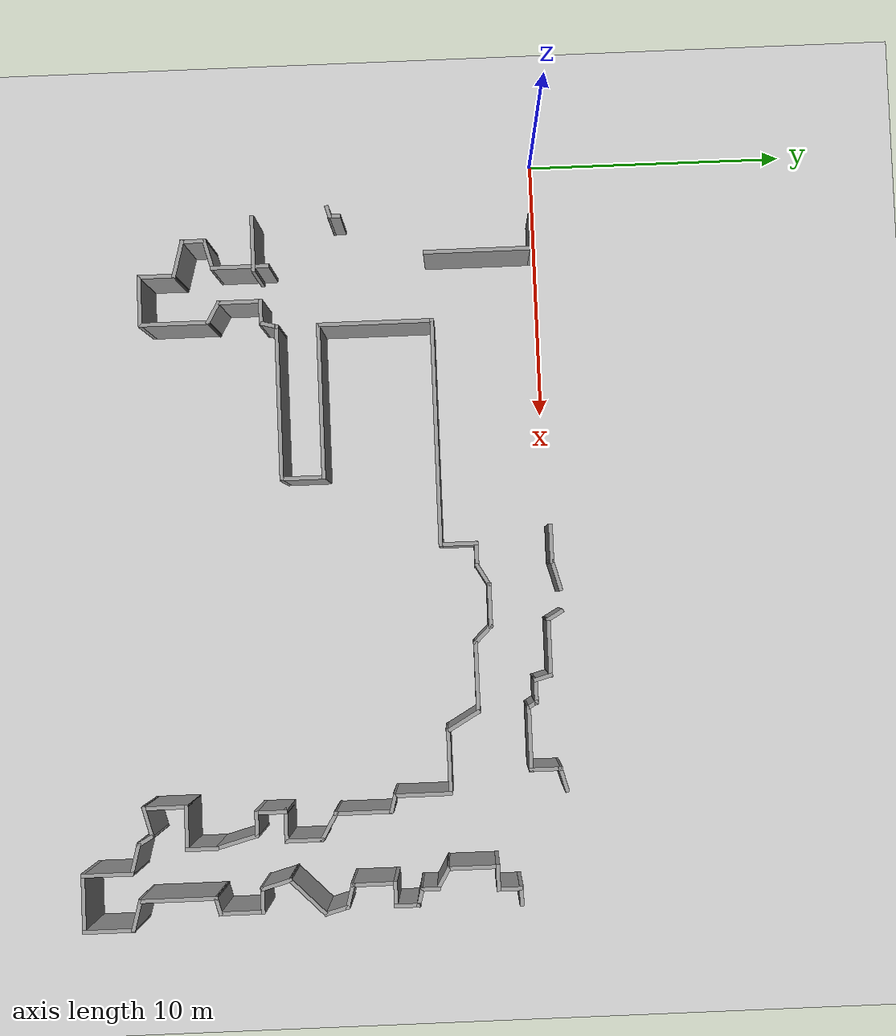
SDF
<sdf version="1.7">
 <world name="default">
  <model name="ground_plane">
   <static>1</static>
   <link name="link">
    <collision name="collision">
     <geometry><plane><normal>0 0 1</normal><size>100 100</size></plane></geometry>
     <surface>
      <contact><collide_bitmask>65535</collide_bitmask></contact>
      <friction><ode><mu>100</mu><mu2>50</mu2></ode></friction>
     </surface>
    </collision>
    <visual name="visual">
     <cast_shadows>0</cast_shadows>
     <geometry><plane><normal>0 0 1</normal><size>100 100</size></plane></geometry>
     <material>
      <script><uri>file://media/materials/scripts/gazebo.material</uri><name>Gazebo/Grey</name></script>
     </material>
    </visual>
   </link>
  </model>
  <model name="latest_world">
   <pose>-1.4911 -0.096187 0 0 -0 0</pose>
   <link name="Wall_10">
    <collision name="Wall_10_Collision">
     <geometry><box><size>1 0.15 2.5</size></box></geometry>
     <pose>0 0 1.25 0 -0 0</pose>
    </collision>
    <visual name="Wall_10_Visual">
     <pose>0 0 1.25 0 -0 0</pose>
     <geometry><box><size>1 0.15 2.5</size></box></geometry>
     <material>
      <script><uri>file://media/materials/scripts/gazebo.material</uri><name>Gazebo/Grey</name></script>
      <ambient>1 1 1 1</ambient>
     </material>
     <meta><layer>0</layer></meta>
    </visual>
    <pose>29.1732 -4.44675 0 0 -0 -0.523599</pose>
   </link>
   <link name="Wall_11">
    <collision name="Wall_11_Collision">
     <geometry><box><size>0.75 0.15 2.5</size></box></geometry>
     <pose>0 0 1.25 0 -0 0</pose>
    </collision>
    <visual name="Wall_11_Visual">
     <pose>0 0 1.25 0 -0 0</pose>
     <geometry><box><size>0.75 0.15 2.5</size></box></geometry>
     <material>
      <script><uri>file://media/materials/scripts/gazebo.material</uri><name>Gazebo/Grey</name></script>
      <ambient>1 1 1 1</ambient>
     </material>
     <meta><layer>0</layer></meta>
    </visual>
    <pose>29.5412 -4.95925 0 0 -0 -1.5708</pose>
   </link>
   <link name="Wall_12">
    <collision name="Wall_12_Collision">
     <geometry><box><size>0.75 0.15 2.5</size></box></geometry>
     <pose>0 0 1.25 0 -0 0</pose>
    </collision>
    <visual name="Wall_12_Visual">
     <pose>0 0 1.25 0 -0 0</pose>
     <geometry><box><size>0.75 0.15 2.5</size></box></geometry>
     <material>
      <script><uri>file://media/materials/scripts/gazebo.material</uri><name>Gazebo/Grey</name></script>
      <ambient>1 1 1 1</ambient>
     </material>
     <meta><layer>0</layer></meta>
    </visual>
    <pose>29.831 -5.3369 0 0 -0 -0.261799</pose>
   </link>
   <link name="Wall_13">
    <collision name="Wall_13_Collision">
     <geometry><box><size>1 0.15 2.5</size></box></geometry>
     <pose>0 0 1.25 0 -0 0</pose>
    </collision>
    <visual name="Wall_13_Visual">
     <pose>0 0 1.25 0 -0 0</pose>
     <geometry><box><size>1 0.15 2.5</size></box></geometry>
     <material>
      <script><uri>file://media/materials/scripts/gazebo.material</uri><name>Gazebo/Grey</name></script>
      <ambient>1 1 1 1</ambient>
     </material>
     <meta><layer>0</layer></meta>
    </visual>
    <pose>30.1208 -5.83954 0 0 -0 -1.5708</pose>
   </link>
   <link name="Wall_14">
    <collision name="Wall_14_Collision">
     <geometry><box><size>1 0.15 2.5</size></box></geometry>
     <pose>0 0 1.25 0 -0 0</pose>
    </collision>
    <visual name="Wall_14_Visual">
     <pose>0 0 1.25 0 -0 0</pose>
     <geometry><box><size>1 0.15 2.5</size></box></geometry>
     <material>
      <script><uri>file://media/materials/scripts/gazebo.material</uri><name>Gazebo/Grey</name></script>
      <ambient>1 1 1 1</ambient>
     </material>
     <meta><layer>0</layer></meta>
    </visual>
    <pose>29.6958 -6.26454 0 0 -0 3.14159</pose>
   </link>
   <link name="Wall_15">
    <collision name="Wall_15_Collision">
     <geometry><box><size>1.75 0.15 2.5</size></box></geometry>
     <pose>0 0 1.25 0 -0 0</pose>
    </collision>
    <visual name="Wall_15_Visual">
     <pose>0 0 1.25 0 -0 0</pose>
     <geometry><box><size>1.75 0.15 2.5</size></box></geometry>
     <material>
      <script><uri>file://media/materials/scripts/gazebo.material</uri><name>Gazebo/Grey</name></script>
      <ambient>1 1 1 1</ambient>
     </material>
     <meta><layer>0</layer></meta>
    </visual>
    <pose>29.2708 -7.06454 0 0 -0 -1.5708</pose>
   </link>
   <link name="Wall_16">
    <collision name="Wall_16_Collision">
     <geometry><box><size>1 0.15 2.5</size></box></geometry>
     <pose>0 0 1.25 0 -0 0</pose>
    </collision>
    <visual name="Wall_16_Visual">
     <pose>0 0 1.25 0 -0 0</pose>
     <geometry><box><size>1 0.15 2.5</size></box></geometry>
     <material>
      <script><uri>file://media/materials/scripts/gazebo.material</uri><name>Gazebo/Grey</name></script>
      <ambient>1 1 1 1</ambient>
     </material>
     <meta><layer>0</layer></meta>
    </visual>
    <pose>29.6813 -7.97454 0 0 -0 -0.261799</pose>
   </link>
   <link name="Wall_17">
    <collision name="Wall_17_Collision">
     <geometry><box><size>1 0.15 2.5</size></box></geometry>
     <pose>0 0 1.25 0 -0 0</pose>
    </collision>
    <visual name="Wall_17_Visual">
     <pose>0 0 1.25 0 -0 0</pose>
     <geometry><box><size>1 0.15 2.5</size></box></geometry>
     <material>
      <script><uri>file://media/materials/scripts/gazebo.material</uri><name>Gazebo/Grey</name></script>
      <ambient>1 1 1 1</ambient>
     </material>
     <meta><layer>0</layer></meta>
    </visual>
    <pose>30.2018 -8.49506 0 0 -0 -1.309</pose>
   </link>
   <link name="Wall_18">
    <collision name="Wall_18_Collision">
     <geometry><box><size>2 0.15 2.5</size></box></geometry>
     <pose>0 0 1.25 0 -0 0</pose>
    </collision>
    <visual name="Wall_18_Visual">
     <pose>0 0 1.25 0 -0 0</pose>
     <geometry><box><size>2 0.15 2.5</size></box></geometry>
     <material>
      <script><uri>file://media/materials/scripts/gazebo.material</uri><name>Gazebo/Grey</name></script>
      <ambient>1 1 1 1</ambient>
     </material>
     <meta><layer>0</layer></meta>
    </visual>
    <pose>29.6577 -9.55965 0 0 -0 -2.35619</pose>
   </link>
   <link name="Wall_19">
    <collision name="Wall_19_Collision">
     <geometry><box><size>1.25 0.15 2.5</size></box></geometry>
     <pose>0 0 1.25 0 -0 0</pose>
    </collision>
    <visual name="Wall_19_Visual">
     <pose>0 0 1.25 0 -0 0</pose>
     <geometry><box><size>1.25 0.15 2.5</size></box></geometry>
     <material>
      <script><uri>file://media/materials/scripts/gazebo.material</uri><name>Gazebo/Grey</name></script>
      <ambient>1 1 1 1</ambient>
     </material>
     <meta><layer>0</layer></meta>
    </visual>
    <pose>29.146 -10.745 0 0 -0 -1.309</pose>
   </link>
   <link name="Wall_20">
    <collision name="Wall_20_Collision">
     <geometry><box><size>1 0.15 2.5</size></box></geometry>
     <pose>0 0 1.25 0 -0 0</pose>
    </collision>
    <visual name="Wall_20_Visual">
     <pose>0 0 1.25 0 -0 0</pose>
     <geometry><box><size>1 0.15 2.5</size></box></geometry>
     <material>
      <script><uri>file://media/materials/scripts/gazebo.material</uri><name>Gazebo/Grey</name></script>
      <ambient>1 1 1 1</ambient>
     </material>
     <meta><layer>0</layer></meta>
    </visual>
    <pose>29.7134 -11.2762 0 0 -0 0</pose>
   </link>
   <link name="Wall_21">
    <collision name="Wall_21_Collision">
     <geometry><box><size>1.75 0.15 2.5</size></box></geometry>
     <pose>0 0 1.25 0 -0 0</pose>
    </collision>
    <visual name="Wall_21_Visual">
     <pose>0 0 1.25 0 -0 0</pose>
     <geometry><box><size>1.75 0.15 2.5</size></box></geometry>
     <material>
      <script><uri>file://media/materials/scripts/gazebo.material</uri><name>Gazebo/Grey</name></script>
      <ambient>1 1 1 1</ambient>
     </material>
     <meta><layer>0</layer></meta>
    </visual>
    <pose>30.1384 -12.0762 0 0 -0 -1.5708</pose>
   </link>
   <link name="Wall_22">
    <collision name="Wall_22_Collision">
     <geometry><box><size>0.75 0.15 2.5</size></box></geometry>
     <pose>0 0 1.25 0 -0 0</pose>
    </collision>
    <visual name="Wall_22_Visual">
     <pose>0 0 1.25 0 -0 0</pose>
     <geometry><box><size>0.75 0.15 2.5</size></box></geometry>
     <material>
      <script><uri>file://media/materials/scripts/gazebo.material</uri><name>Gazebo/Grey</name></script>
      <ambient>1 1 1 1</ambient>
     </material>
     <meta><layer>0</layer></meta>
    </visual>
    <pose>29.8486 -12.9539 0 0 -0 -2.87979</pose>
   </link>
   <link name="Wall_23">
    <collision name="Wall_23_Collision">
     <geometry><box><size>3 0.15 2.5</size></box></geometry>
     <pose>0 0 1.25 0 -0 0</pose>
    </collision>
    <visual name="Wall_23_Visual">
     <pose>0 0 1.25 0 -0 0</pose>
     <geometry><box><size>3 0.15 2.5</size></box></geometry>
     <material>
      <script><uri>file://media/materials/scripts/gazebo.material</uri><name>Gazebo/Grey</name></script>
      <ambient>1 1 1 1</ambient>
     </material>
     <meta><layer>0</layer></meta>
    </visual>
    <pose>29.5588 -14.4565 0 0 -0 -1.5708</pose>
   </link>
   <link name="Wall_24">
    <collision name="Wall_24_Collision">
     <geometry><box><size>1.25 0.15 2.5</size></box></geometry>
     <pose>0 0 1.25 0 -0 0</pose>
    </collision>
    <visual name="Wall_24_Visual">
     <pose>0 0 1.25 0 -0 0</pose>
     <geometry><box><size>1.25 0.15 2.5</size></box></geometry>
     <material>
      <script><uri>file://media/materials/scripts/gazebo.material</uri><name>Gazebo/Grey</name></script>
      <ambient>1 1 1 1</ambient>
     </material>
     <meta><layer>0</layer></meta>
    </visual>
    <pose>30.0901 -16.0239 0 0 -0 -0.261799</pose>
   </link>
   <link name="Wall_25">
    <collision name="Wall_25_Collision">
     <geometry><box><size>2 0.15 2.5</size></box></geometry>
     <pose>0 0 1.25 0 -0 0</pose>
    </collision>
    <visual name="Wall_25_Visual">
     <pose>0 0 1.25 0 -0 0</pose>
     <geometry><box><size>2 0.15 2.5</size></box></geometry>
     <material>
      <script><uri>file://media/materials/scripts/gazebo.material</uri><name>Gazebo/Grey</name></script>
      <ambient>1 1 1 1</ambient>
     </material>
     <meta><layer>0</layer></meta>
    </visual>
    <pose>30.6213 -17.0912 0 0 -0 -1.5708</pose>
   </link>
   <link name="Wall_26">
    <collision name="Wall_26_Collision">
     <geometry><box><size>2.25 0.15 2.5</size></box></geometry>
     <pose>0 0 1.25 0 -0 0</pose>
    </collision>
    <visual name="Wall_26_Visual">
     <pose>0 0 1.25 0 -0 0</pose>
     <geometry><box><size>2.25 0.15 2.5</size></box></geometry>
     <material>
      <script><uri>file://media/materials/scripts/gazebo.material</uri><name>Gazebo/Grey</name></script>
      <ambient>1 1 1 1</ambient>
     </material>
     <meta><layer>0</layer></meta>
    </visual>
    <pose>29.5713 -18.0162 0 0 -0 3.14159</pose>
   </link>
   <link name="Wall_27">
    <collision name="Wall_27_Collision">
     <geometry><box><size>2 0.15 2.5</size></box></geometry>
     <pose>0 0 1.25 0 -0 0</pose>
    </collision>
    <visual name="Wall_27_Visual">
     <pose>0 0 1.25 0 -0 0</pose>
     <geometry><box><size>2 0.15 2.5</size></box></geometry>
     <material>
      <script><uri>file://media/materials/scripts/gazebo.material</uri><name>Gazebo/Grey</name></script>
      <ambient>1 1 1 1</ambient>
     </material>
     <meta><layer>0</layer></meta>
    </visual>
    <pose>28.5213 -17.0912 0 0 -0 1.5708</pose>
   </link>
   <link name="Wall_28">
    <collision name="Wall_28_Collision">
     <geometry><box><size>1.25 0.15 2.5</size></box></geometry>
     <pose>0 0 1.25 0 -0 0</pose>
    </collision>
    <visual name="Wall_28_Visual">
     <pose>0 0 1.25 0 -0 0</pose>
     <geometry><box><size>1.25 0.15 2.5</size></box></geometry>
     <material>
      <script><uri>file://media/materials/scripts/gazebo.material</uri><name>Gazebo/Grey</name></script>
      <ambient>1 1 1 1</ambient>
     </material>
     <meta><layer>0</layer></meta>
    </visual>
    <pose>27.9901 -16.0239 0 0 -0 2.87979</pose>
   </link>
   <link name="Wall_29">
    <collision name="Wall_29_Collision">
     <geometry><box><size>0.75 0.15 2.5</size></box></geometry>
     <pose>0 0 1.25 0 -0 0</pose>
    </collision>
    <visual name="Wall_29_Visual">
     <pose>0 0 1.25 0 -0 0</pose>
     <geometry><box><size>0.75 0.15 2.5</size></box></geometry>
     <material>
      <script><uri>file://media/materials/scripts/gazebo.material</uri><name>Gazebo/Grey</name></script>
      <ambient>1 1 1 1</ambient>
     </material>
     <meta><layer>0</layer></meta>
    </visual>
    <pose>27.3088 -15.6217 0 0 -0 2.0944</pose>
   </link>
   <link name="Wall_290">
    <collision name="Wall_290_Collision">
     <geometry><box><size>0.5 0.15 2.5</size></box></geometry>
     <pose>0 0 1.25 0 -0 0</pose>
    </collision>
    <visual name="Wall_290_Visual">
     <pose>0 0 1.25 0 -0 0</pose>
     <geometry><box><size>0.5 0.15 2.5</size></box></geometry>
     <material>
      <script><uri>file://media/materials/scripts/gazebo.material</uri><name>Gazebo/Grey</name></script>
      <ambient>1 1 1 1</ambient>
     </material>
     <meta><layer>0</layer></meta>
    </visual>
    <pose>3.6309 -7.85749 0 0 -0 0.261799</pose>
   </link>
   <link name="Wall_291">
    <collision name="Wall_291_Collision">
     <geometry><box><size>0.5 0.15 2.5</size></box></geometry>
     <pose>0 0 1.25 0 -0 0</pose>
    </collision>
    <visual name="Wall_291_Visual">
     <pose>0 0 1.25 0 -0 0</pose>
     <geometry><box><size>0.5 0.15 2.5</size></box></geometry>
     <material>
      <script><uri>file://media/materials/scripts/gazebo.material</uri><name>Gazebo/Grey</name></script>
      <ambient>1 1 1 1</ambient>
     </material>
     <meta><layer>0</layer></meta>
    </visual>
    <pose>3.79994 -7.6372 0 0 -0 1.5708</pose>
   </link>
   <link name="Wall_30">
    <collision name="Wall_30_Collision">
     <geometry><box><size>1.25 0.15 2.5</size></box></geometry>
     <pose>0 0 1.25 0 -0 0</pose>
    </collision>
    <visual name="Wall_30_Visual">
     <pose>0 0 1.25 0 -0 0</pose>
     <geometry><box><size>1.25 0.15 2.5</size></box></geometry>
     <material>
      <script><uri>file://media/materials/scripts/gazebo.material</uri><name>Gazebo/Grey</name></script>
      <ambient>1 1 1 1</ambient>
     </material>
     <meta><layer>0</layer></meta>
    </visual>
    <pose>26.6276 -15.5043 0 0 -0 -2.87979</pose>
   </link>
   <link name="Wall_303">
    <collision name="Wall_303_Collision">
     <geometry><box><size>4.25 0.15 2.5</size></box></geometry>
     <pose>0 0 1.25 0 -0 0</pose>
    </collision>
    <visual name="Wall_303_Visual">
     <pose>0 0 1.25 0 -0 0</pose>
     <geometry><box><size>4.25 0.15 2.5</size></box></geometry>
     <material>
      <script><uri>file://media/materials/scripts/gazebo.material</uri><name>Gazebo/Grey</name></script>
      <ambient>1 1 1 1</ambient>
     </material>
     <meta><layer>0</layer></meta>
    </visual>
    <pose>5.34517 -2.14712 0 0 -0 1.5708</pose>
   </link>
   <link name="Wall_304">
    <collision name="Wall_304_Collision">
     <geometry><box><size>1.5 0.15 2.5</size></box></geometry>
     <pose>0 0 1.25 0 -0 0</pose>
    </collision>
    <visual name="Wall_304_Visual">
     <pose>0 0 1.25 0 -0 0</pose>
     <geometry><box><size>1.5 0.15 2.5</size></box></geometry>
     <material>
      <script><uri>file://media/materials/scripts/gazebo.material</uri><name>Gazebo/Grey</name></script>
      <ambient>1 1 1 1</ambient>
     </material>
     <meta><layer>0</layer></meta>
    </visual>
    <pose>4.67017 -0.097116 0 0 -0 3.14159</pose>
   </link>
   <link name="Wall_31">
    <collision name="Wall_31_Collision">
     <geometry><box><size>1.75 0.15 2.5</size></box></geometry>
     <pose>0 0 1.25 0 -0 0</pose>
    </collision>
    <visual name="Wall_31_Visual">
     <pose>0 0 1.25 0 -0 0</pose>
     <geometry><box><size>1.75 0.15 2.5</size></box></geometry>
     <material>
      <script><uri>file://media/materials/scripts/gazebo.material</uri><name>Gazebo/Grey</name></script>
      <ambient>1 1 1 1</ambient>
     </material>
     <meta><layer>0</layer></meta>
    </visual>
    <pose>26.0963 -14.8466 0 0 -0 1.5708</pose>
   </link>
   <link name="Wall_32">
    <collision name="Wall_32_Collision">
     <geometry><box><size>1.75 0.15 2.5</size></box></geometry>
     <pose>0 0 1.25 0 -0 0</pose>
    </collision>
    <visual name="Wall_32_Visual">
     <pose>0 0 1.25 0 -0 0</pose>
     <geometry><box><size>1.75 0.15 2.5</size></box></geometry>
     <material>
      <script><uri>file://media/materials/scripts/gazebo.material</uri><name>Gazebo/Grey</name></script>
      <ambient>1 1 1 1</ambient>
     </material>
     <meta><layer>0</layer></meta>
    </visual>
    <pose>26.8963 -14.0466 0 0 -0 0</pose>
   </link>
   <link name="Wall_33">
    <collision name="Wall_33_Collision">
     <geometry><box><size>1.25 0.15 2.5</size></box></geometry>
     <pose>0 0 1.25 0 -0 0</pose>
    </collision>
    <visual name="Wall_33_Visual">
     <pose>0 0 1.25 0 -0 0</pose>
     <geometry><box><size>1.25 0.15 2.5</size></box></geometry>
     <material>
      <script><uri>file://media/materials/scripts/gazebo.material</uri><name>Gazebo/Grey</name></script>
      <ambient>1 1 1 1</ambient>
     </material>
     <meta><layer>0</layer></meta>
    </visual>
    <pose>27.6963 -13.4966 0 0 -0 1.5708</pose>
   </link>
   <link name="Wall_34">
    <collision name="Wall_34_Collision">
     <geometry><box><size>1.75 0.15 2.5</size></box></geometry>
     <pose>0 0 1.25 0 -0 0</pose>
    </collision>
    <visual name="Wall_34_Visual">
     <pose>0 0 1.25 0 -0 0</pose>
     <geometry><box><size>1.75 0.15 2.5</size></box></geometry>
     <material>
      <script><uri>file://media/materials/scripts/gazebo.material</uri><name>Gazebo/Grey</name></script>
      <ambient>1 1 1 1</ambient>
     </material>
     <meta><layer>0</layer></meta>
    </visual>
    <pose>27.4892 -12.1739 0 0 -0 1.8326</pose>
   </link>
   <link name="Wall_35">
    <collision name="Wall_35_Collision">
     <geometry><box><size>1 0.15 2.5</size></box></geometry>
     <pose>0 0 1.25 0 -0 0</pose>
    </collision>
    <visual name="Wall_35_Visual">
     <pose>0 0 1.25 0 -0 0</pose>
     <geometry><box><size>1 0.15 2.5</size></box></geometry>
     <material>
      <script><uri>file://media/materials/scripts/gazebo.material</uri><name>Gazebo/Grey</name></script>
      <ambient>1 1 1 1</ambient>
     </material>
     <meta><layer>0</layer></meta>
    </visual>
    <pose>26.8572 -11.4011 0 0 -0 3.14159</pose>
   </link>
   <link name="Wall_36">
    <collision name="Wall_36_Collision">
     <geometry><box><size>1.25 0.15 2.5</size></box></geometry>
     <pose>0 0 1.25 0 -0 0</pose>
    </collision>
    <visual name="Wall_36_Visual">
     <pose>0 0 1.25 0 -0 0</pose>
     <geometry><box><size>1.25 0.15 2.5</size></box></geometry>
     <material>
      <script><uri>file://media/materials/scripts/gazebo.material</uri><name>Gazebo/Grey</name></script>
      <ambient>1 1 1 1</ambient>
     </material>
     <meta><layer>0</layer></meta>
    </visual>
    <pose>26.4322 -10.8511 0 0 -0 1.5708</pose>
   </link>
   <link name="Wall_37">
    <collision name="Wall_37_Collision">
     <geometry><box><size>1.25 0.15 2.5</size></box></geometry>
     <pose>0 0 1.25 0 -0 0</pose>
    </collision>
    <visual name="Wall_37_Visual">
     <pose>0 0 1.25 0 -0 0</pose>
     <geometry><box><size>1.25 0.15 2.5</size></box></geometry>
     <material>
      <script><uri>file://media/materials/scripts/gazebo.material</uri><name>Gazebo/Grey</name></script>
      <ambient>1 1 1 1</ambient>
     </material>
     <meta><layer>0</layer></meta>
    </visual>
    <pose>26.9822 -10.3011 0 0 -0 0</pose>
   </link>
   <link name="Wall_38">
    <collision name="Wall_38_Collision">
     <geometry><box><size>1.5 0.15 2.5</size></box></geometry>
     <pose>0 0 1.25 0 -0 0</pose>
    </collision>
    <visual name="Wall_38_Visual">
     <pose>0 0 1.25 0 -0 0</pose>
     <geometry><box><size>1.5 0.15 2.5</size></box></geometry>
     <material>
      <script><uri>file://media/materials/scripts/gazebo.material</uri><name>Gazebo/Grey</name></script>
      <ambient>1 1 1 1</ambient>
     </material>
     <meta><layer>0</layer></meta>
    </visual>
    <pose>27.5322 -9.62614 0 0 -0 1.5708</pose>
   </link>
   <link name="Wall_39">
    <collision name="Wall_39_Collision">
     <geometry><box><size>1.25 0.15 2.5</size></box></geometry>
     <pose>0 0 1.25 0 -0 0</pose>
    </collision>
    <visual name="Wall_39_Visual">
     <pose>0 0 1.25 0 -0 0</pose>
     <geometry><box><size>1.25 0.15 2.5</size></box></geometry>
     <material>
      <script><uri>file://media/materials/scripts/gazebo.material</uri><name>Gazebo/Grey</name></script>
      <ambient>1 1 1 1</ambient>
     </material>
     <meta><layer>0</layer></meta>
    </visual>
    <pose>27.0559 -8.67614 0 0 -0 2.61799</pose>
   </link>
   <link name="Wall_391">
    <collision name="Wall_391_Collision">
     <geometry><box><size>1 0.15 2.5</size></box></geometry>
     <pose>0 0 1.25 0 -0 0</pose>
    </collision>
    <visual name="Wall_391_Visual">
     <pose>0 0 1.25 0 -0 0</pose>
     <geometry><box><size>1 0.15 2.5</size></box></geometry>
     <material>
      <script><uri>file://media/materials/scripts/gazebo.material</uri><name>Gazebo/Grey</name></script>
      <ambient>1 1 1 1</ambient>
     </material>
     <meta><layer>0</layer></meta>
    </visual>
    <pose>25.6466 0.242239 0 0 -0 -2.87979</pose>
   </link>
   <link name="Wall_392">
    <collision name="Wall_392_Collision">
     <geometry><box><size>1.25 0.15 2.5</size></box></geometry>
     <pose>0 0 1.25 0 -0 0</pose>
    </collision>
    <visual name="Wall_392_Visual">
     <pose>0 0 1.25 0 -0 0</pose>
     <geometry><box><size>1.25 0.15 2.5</size></box></geometry>
     <material>
      <script><uri>file://media/materials/scripts/gazebo.material</uri><name>Gazebo/Grey</name></script>
      <ambient>1 1 1 1</ambient>
     </material>
     <meta><layer>0</layer></meta>
    </visual>
    <pose>25.2361 -0.417759 0 0 -0 -1.5708</pose>
   </link>
   <link name="Wall_393">
    <collision name="Wall_393_Collision">
     <geometry><box><size>2.5 0.15 2.5</size></box></geometry>
     <pose>0 0 1.25 0 -0 0</pose>
    </collision>
    <visual name="Wall_393_Visual">
     <pose>0 0 1.25 0 -0 0</pose>
     <geometry><box><size>2.5 0.15 2.5</size></box></geometry>
     <material>
      <script><uri>file://media/materials/scripts/gazebo.material</uri><name>Gazebo/Grey</name></script>
      <ambient>1 1 1 1</ambient>
     </material>
     <meta><layer>0</layer></meta>
    </visual>
    <pose>24.0611 -0.967759 0 0 -0 3.14159</pose>
   </link>
   <link name="Wall_394">
    <collision name="Wall_394_Collision">
     <geometry><box><size>0.5 0.15 2.5</size></box></geometry>
     <pose>0 0 1.25 0 -0 0</pose>
    </collision>
    <visual name="Wall_394_Visual">
     <pose>0 0 1.25 0 -0 0</pose>
     <geometry><box><size>0.5 0.15 2.5</size></box></geometry>
     <material>
      <script><uri>file://media/materials/scripts/gazebo.material</uri><name>Gazebo/Grey</name></script>
      <ambient>1 1 1 1</ambient>
     </material>
     <meta><layer>0</layer></meta>
    </visual>
    <pose>22.7986 -0.816204 0 0 -0 2.0944</pose>
   </link>
   <link name="Wall_395">
    <collision name="Wall_395_Collision">
     <geometry><box><size>1 0.15 2.5</size></box></geometry>
     <pose>0 0 1.25 0 -0 0</pose>
    </collision>
    <visual name="Wall_395_Visual">
     <pose>0 0 1.25 0 -0 0</pose>
     <geometry><box><size>1 0.15 2.5</size></box></geometry>
     <material>
      <script><uri>file://media/materials/scripts/gazebo.material</uri><name>Gazebo/Grey</name></script>
      <ambient>1 1 1 1</ambient>
     </material>
     <meta><layer>0</layer></meta>
    </visual>
    <pose>22.2861 -0.66465 0 0 -0 3.14159</pose>
   </link>
   <link name="Wall_396">
    <collision name="Wall_396_Collision">
     <geometry><box><size>0.75 0.15 2.5</size></box></geometry>
     <pose>0 0 1.25 0 -0 0</pose>
    </collision>
    <visual name="Wall_396_Visual">
     <pose>0 0 1.25 0 -0 0</pose>
     <geometry><box><size>0.75 0.15 2.5</size></box></geometry>
     <material>
      <script><uri>file://media/materials/scripts/gazebo.material</uri><name>Gazebo/Grey</name></script>
      <ambient>1 1 1 1</ambient>
     </material>
     <meta><layer>0</layer></meta>
    </visual>
    <pose>21.7835 -0.374872 0 0 -0 1.8326</pose>
   </link>
   <link name="Wall_397">
    <collision name="Wall_397_Collision">
     <geometry><box><size>2.25 0.15 2.5</size></box></geometry>
     <pose>0 0 1.25 0 -0 0</pose>
    </collision>
    <visual name="Wall_397_Visual">
     <pose>0 0 1.25 0 -0 0</pose>
     <geometry><box><size>2.25 0.15 2.5</size></box></geometry>
     <material>
      <script><uri>file://media/materials/scripts/gazebo.material</uri><name>Gazebo/Grey</name></script>
      <ambient>1 1 1 1</ambient>
     </material>
     <meta><layer>0</layer></meta>
    </visual>
    <pose>20.6558 -0.085094 0 0 -0 3.14159</pose>
   </link>
   <link name="Wall_398">
    <collision name="Wall_398_Collision">
     <geometry><box><size>0.75 0.15 2.5</size></box></geometry>
     <pose>0 0 1.25 0 -0 0</pose>
    </collision>
    <visual name="Wall_398_Visual">
     <pose>0 0 1.25 0 -0 0</pose>
     <geometry><box><size>0.75 0.15 2.5</size></box></geometry>
     <material>
      <script><uri>file://media/materials/scripts/gazebo.material</uri><name>Gazebo/Grey</name></script>
      <ambient>1 1 1 1</ambient>
     </material>
     <meta><layer>0</layer></meta>
    </visual>
    <pose>19.4558 0.174713 0 0 -0 2.0944</pose>
   </link>
   <link name="Wall_40">
    <collision name="Wall_40_Collision">
     <geometry><box><size>2.25 0.15 2.5</size></box></geometry>
     <pose>0 0 1.25 0 -0 0</pose>
    </collision>
    <visual name="Wall_40_Visual">
     <pose>0 0 1.25 0 -0 0</pose>
     <geometry><box><size>2.25 0.15 2.5</size></box></geometry>
     <material>
      <script><uri>file://media/materials/scripts/gazebo.material</uri><name>Gazebo/Grey</name></script>
      <ambient>1 1 1 1</ambient>
     </material>
     <meta><layer>0</layer></meta>
    </visual>
    <pose>26.5796 -7.35114 0 0 -0 1.5708</pose>
   </link>
   <link name="Wall_400">
    <collision name="Wall_400_Collision">
     <geometry><box><size>1.25 0.15 2.5</size></box></geometry>
     <pose>0 0 1.25 0 -0 0</pose>
    </collision>
    <visual name="Wall_400_Visual">
     <pose>0 0 1.25 0 -0 0</pose>
     <geometry><box><size>1.25 0.15 2.5</size></box></geometry>
     <material>
      <script><uri>file://media/materials/scripts/gazebo.material</uri><name>Gazebo/Grey</name></script>
      <ambient>1 1 1 1</ambient>
     </material>
     <meta><layer>0</layer></meta>
    </visual>
    <pose>17.9246 0.292171 0 0 -0 -2.87979</pose>
   </link>
   <link name="Wall_401">
    <collision name="Wall_401_Collision">
     <geometry><box><size>1.5 0.15 2.5</size></box></geometry>
     <pose>0 0 1.25 0 -0 0</pose>
    </collision>
    <visual name="Wall_401_Visual">
     <pose>0 0 1.25 0 -0 0</pose>
     <geometry><box><size>1.5 0.15 2.5</size></box></geometry>
     <material>
      <script><uri>file://media/materials/scripts/gazebo.material</uri><name>Gazebo/Grey</name></script>
      <ambient>1 1 1 1</ambient>
     </material>
     <meta><layer>0</layer></meta>
    </visual>
    <pose>16.7183 0.14982 0 0 -0 3.14159</pose>
   </link>
   <link name="Wall_41">
    <collision name="Wall_41_Collision">
     <geometry><box><size>0.75 0.15 2.5</size></box></geometry>
     <pose>0 0 1.25 0 -0 0</pose>
    </collision>
    <visual name="Wall_41_Visual">
     <pose>0 0 1.25 0 -0 0</pose>
     <geometry><box><size>0.75 0.15 2.5</size></box></geometry>
     <material>
      <script><uri>file://media/materials/scripts/gazebo.material</uri><name>Gazebo/Grey</name></script>
      <ambient>1 1 1 1</ambient>
     </material>
     <meta><layer>0</layer></meta>
    </visual>
    <pose>26.2898 -6.22349 0 0 -0 2.87979</pose>
   </link>
   <link name="Wall_42">
    <collision name="Wall_42_Collision">
     <geometry><box><size>2.25 0.15 2.5</size></box></geometry>
     <pose>0 0 1.25 0 -0 0</pose>
    </collision>
    <visual name="Wall_42_Visual">
     <pose>0 0 1.25 0 -0 0</pose>
     <geometry><box><size>2.25 0.15 2.5</size></box></geometry>
     <material>
      <script><uri>file://media/materials/scripts/gazebo.material</uri><name>Gazebo/Grey</name></script>
      <ambient>1 1 1 1</ambient>
     </material>
     <meta><layer>0</layer></meta>
    </visual>
    <pose>26 -5.09585 0 0 -0 1.5708</pose>
   </link>
   <link name="Wall_43">
    <collision name="Wall_43_Collision">
     <geometry><box><size>2.5 0.15 2.5</size></box></geometry>
     <pose>0 0 1.25 0 -0 0</pose>
    </collision>
    <visual name="Wall_43_Visual">
     <pose>0 0 1.25 0 -0 0</pose>
     <geometry><box><size>2.5 0.15 2.5</size></box></geometry>
     <material>
      <script><uri>file://media/materials/scripts/gazebo.material</uri><name>Gazebo/Grey</name></script>
      <ambient>1 1 1 1</ambient>
     </material>
     <meta><layer>0</layer></meta>
    </visual>
    <pose>24.825 -4.04585 0 0 -0 3.14159</pose>
   </link>
   <link name="Wall_44">
    <collision name="Wall_44_Collision">
     <geometry><box><size>1.5 0.15 2.5</size></box></geometry>
     <pose>0 0 1.25 0 -0 0</pose>
    </collision>
    <visual name="Wall_44_Visual">
     <pose>0 0 1.25 0 -0 0</pose>
     <geometry><box><size>1.5 0.15 2.5</size></box></geometry>
     <material>
      <script><uri>file://media/materials/scripts/gazebo.material</uri><name>Gazebo/Grey</name></script>
      <ambient>1 1 1 1</ambient>
     </material>
     <meta><layer>0</layer></meta>
    </visual>
    <pose>23.3125 -3.46128 0 0 -0 2.0944</pose>
   </link>
   <link name="Wall_45">
    <collision name="Wall_45_Collision">
     <geometry><box><size>2.75 0.15 2.5</size></box></geometry>
     <pose>0 0 1.25 0 -0 0</pose>
    </collision>
    <visual name="Wall_45_Visual">
     <pose>0 0 1.25 0 -0 0</pose>
     <geometry><box><size>2.75 0.15 2.5</size></box></geometry>
     <material>
      <script><uri>file://media/materials/scripts/gazebo.material</uri><name>Gazebo/Grey</name></script>
      <ambient>1 1 1 1</ambient>
     </material>
     <meta><layer>0</layer></meta>
    </visual>
    <pose>21.675 -2.87671 0 0 -0 3.14159</pose>
   </link>
   <link name="Wall_46">
    <collision name="Wall_46_Collision">
     <geometry><box><size>1 0.15 2.5</size></box></geometry>
     <pose>0 0 1.25 0 -0 0</pose>
    </collision>
    <visual name="Wall_46_Visual">
     <pose>0 0 1.25 0 -0 0</pose>
     <geometry><box><size>1 0.15 2.5</size></box></geometry>
     <material>
      <script><uri>file://media/materials/scripts/gazebo.material</uri><name>Gazebo/Grey</name></script>
      <ambient>1 1 1 1</ambient>
     </material>
     <meta><layer>0</layer></meta>
    </visual>
    <pose>20.0745 -2.57619 0 0 -0 2.35619</pose>
   </link>
   <link name="Wall_47">
    <collision name="Wall_47_Collision">
     <geometry><box><size>1.75 0.15 2.5</size></box></geometry>
     <pose>0 0 1.25 0 -0 0</pose>
    </collision>
    <visual name="Wall_47_Visual">
     <pose>0 0 1.25 0 -0 0</pose>
     <geometry><box><size>1.75 0.15 2.5</size></box></geometry>
     <material>
      <script><uri>file://media/materials/scripts/gazebo.material</uri><name>Gazebo/Grey</name></script>
      <ambient>1 1 1 1</ambient>
     </material>
     <meta><layer>0</layer></meta>
    </visual>
    <pose>18.974 -2.27567 0 0 -0 3.14159</pose>
   </link>
   <link name="Wall_48">
    <collision name="Wall_48_Collision">
     <geometry><box><size>1 0.15 2.5</size></box></geometry>
     <pose>0 0 1.25 0 -0 0</pose>
    </collision>
    <visual name="Wall_48_Visual">
     <pose>0 0 1.25 0 -0 0</pose>
     <geometry><box><size>1 0.15 2.5</size></box></geometry>
     <material>
      <script><uri>file://media/materials/scripts/gazebo.material</uri><name>Gazebo/Grey</name></script>
      <ambient>1 1 1 1</ambient>
     </material>
     <meta><layer>0</layer></meta>
    </visual>
    <pose>17.8059 -2.48817 0 0 -0 -2.61799</pose>
   </link>
   <link name="Wall_49">
    <collision name="Wall_49_Collision">
     <geometry><box><size>1 0.15 2.5</size></box></geometry>
     <pose>0 0 1.25 0 -0 0</pose>
    </collision>
    <visual name="Wall_49_Visual">
     <pose>0 0 1.25 0 -0 0</pose>
     <geometry><box><size>1 0.15 2.5</size></box></geometry>
     <material>
      <script><uri>file://media/materials/scripts/gazebo.material</uri><name>Gazebo/Grey</name></script>
      <ambient>1 1 1 1</ambient>
     </material>
     <meta><layer>0</layer></meta>
    </visual>
    <pose>17.0128 -2.70067 0 0 -0 3.14159</pose>
   </link>
   <link name="Wall_50">
    <collision name="Wall_50_Collision">
     <geometry><box><size>1.5 0.15 2.5</size></box></geometry>
     <pose>0 0 1.25 0 -0 0</pose>
    </collision>
    <visual name="Wall_50_Visual">
     <pose>0 0 1.25 0 -0 0</pose>
     <geometry><box><size>1.5 0.15 2.5</size></box></geometry>
     <material>
      <script><uri>file://media/materials/scripts/gazebo.material</uri><name>Gazebo/Grey</name></script>
      <ambient>1 1 1 1</ambient>
     </material>
     <meta><layer>0</layer></meta>
    </visual>
    <pose>16.5878 -3.37567 0 0 -0 -1.5708</pose>
   </link>
   <link name="Wall_51">
    <collision name="Wall_51_Collision">
     <geometry><box><size>8.75 0.15 2.5</size></box></geometry>
     <pose>0 0 1.25 0 -0 0</pose>
    </collision>
    <visual name="Wall_51_Visual">
     <pose>0 0 1.25 0 -0 0</pose>
     <geometry><box><size>8.75 0.15 2.5</size></box></geometry>
     <material>
      <script><uri>file://media/materials/scripts/gazebo.material</uri><name>Gazebo/Grey</name></script>
      <ambient>1 1 1 1</ambient>
     </material>
     <meta><layer>0</layer></meta>
    </visual>
    <pose>12.2878 -4.05067 0 0 -0 3.14159</pose>
   </link>
   <link name="Wall_52">
    <collision name="Wall_52_Collision">
     <geometry><box><size>4.5 0.15 2.5</size></box></geometry>
     <pose>0 0 1.25 0 -0 0</pose>
    </collision>
    <visual name="Wall_52_Visual">
     <pose>0 0 1.25 0 -0 0</pose>
     <geometry><box><size>4.5 0.15 2.5</size></box></geometry>
     <material>
      <script><uri>file://media/materials/scripts/gazebo.material</uri><name>Gazebo/Grey</name></script>
      <ambient>1 1 1 1</ambient>
     </material>
     <meta><layer>0</layer></meta>
    </visual>
    <pose>7.98784 -6.22567 0 0 -0 -1.5708</pose>
   </link>
   <link name="Wall_53">
    <collision name="Wall_53_Collision">
     <geometry><box><size>6 0.15 2.5</size></box></geometry>
     <pose>0 0 1.25 0 -0 0</pose>
    </collision>
    <visual name="Wall_53_Visual">
     <pose>0 0 1.25 0 -0 0</pose>
     <geometry><box><size>6 0.15 2.5</size></box></geometry>
     <material>
      <script><uri>file://media/materials/scripts/gazebo.material</uri><name>Gazebo/Grey</name></script>
      <ambient>1 1 1 1</ambient>
     </material>
     <meta><layer>0</layer></meta>
    </visual>
    <pose>10.9128 -8.40067 0 0 -0 0</pose>
   </link>
   <link name="Wall_54">
    <collision name="Wall_54_Collision">
     <geometry><box><size>1.75 0.15 2.5</size></box></geometry>
     <pose>0 0 1.25 0 -0 0</pose>
    </collision>
    <visual name="Wall_54_Visual">
     <pose>0 0 1.25 0 -0 0</pose>
     <geometry><box><size>1.75 0.15 2.5</size></box></geometry>
     <material>
      <script><uri>file://media/materials/scripts/gazebo.material</uri><name>Gazebo/Grey</name></script>
      <ambient>1 1 1 1</ambient>
     </material>
     <meta><layer>0</layer></meta>
    </visual>
    <pose>13.8378 -9.20067 0 0 -0 -1.5708</pose>
   </link>
   <link name="Wall_55">
    <collision name="Wall_55_Collision">
     <geometry><box><size>6 0.15 2.5</size></box></geometry>
     <pose>0 0 1.25 0 -0 0</pose>
    </collision>
    <visual name="Wall_55_Visual">
     <pose>0 0 1.25 0 -0 0</pose>
     <geometry><box><size>6 0.15 2.5</size></box></geometry>
     <material>
      <script><uri>file://media/materials/scripts/gazebo.material</uri><name>Gazebo/Grey</name></script>
      <ambient>1 1 1 1</ambient>
     </material>
     <meta><layer>0</layer></meta>
    </visual>
    <pose>10.9128 -10.0007 0 0 -0 3.14159</pose>
   </link>
   <link name="Wall_56">
    <collision name="Wall_56_Collision">
     <geometry><box><size>0.75 0.15 2.5</size></box></geometry>
     <pose>0 0 1.25 0 -0 0</pose>
    </collision>
    <visual name="Wall_56_Visual">
     <pose>0 0 1.25 0 -0 0</pose>
     <geometry><box><size>0.75 0.15 2.5</size></box></geometry>
     <material>
      <script><uri>file://media/materials/scripts/gazebo.material</uri><name>Gazebo/Grey</name></script>
      <ambient>1 1 1 1</ambient>
     </material>
     <meta><layer>0</layer></meta>
    </visual>
    <pose>7.9102 -10.2904 0 0 -0 -1.8326</pose>
   </link>
   <link name="Wall_57">
    <collision name="Wall_57_Collision">
     <geometry><box><size>1 0.15 2.5</size></box></geometry>
     <pose>0 0 1.25 0 -0 0</pose>
    </collision>
    <visual name="Wall_57_Visual">
     <pose>0 0 1.25 0 -0 0</pose>
     <geometry><box><size>1 0.15 2.5</size></box></geometry>
     <material>
      <script><uri>file://media/materials/scripts/gazebo.material</uri><name>Gazebo/Grey</name></script>
      <ambient>1 1 1 1</ambient>
     </material>
     <meta><layer>0</layer></meta>
    </visual>
    <pose>7.40755 -10.5802 0 0 -0 3.14159</pose>
   </link>
   <link name="Wall_58">
    <collision name="Wall_58_Collision">
     <geometry><box><size>1.75 0.15 2.5</size></box></geometry>
     <pose>0 0 1.25 0 -0 0</pose>
    </collision>
    <visual name="Wall_58_Visual">
     <pose>0 0 1.25 0 -0 0</pose>
     <geometry><box><size>1.75 0.15 2.5</size></box></geometry>
     <material>
      <script><uri>file://media/materials/scripts/gazebo.material</uri><name>Gazebo/Grey</name></script>
      <ambient>1 1 1 1</ambient>
     </material>
     <meta><layer>0</layer></meta>
    </visual>
    <pose>6.98255 -11.3802 0 0 -0 -1.5708</pose>
   </link>
   <link name="Wall_59">
    <collision name="Wall_59_Collision">
     <geometry><box><size>1 0.15 2.5</size></box></geometry>
     <pose>0 0 1.25 0 -0 0</pose>
    </collision>
    <visual name="Wall_59_Visual">
     <pose>0 0 1.25 0 -0 0</pose>
     <geometry><box><size>1 0.15 2.5</size></box></geometry>
     <material>
      <script><uri>file://media/materials/scripts/gazebo.material</uri><name>Gazebo/Grey</name></script>
      <ambient>1 1 1 1</ambient>
     </material>
     <meta><layer>0</layer></meta>
    </visual>
    <pose>7.35061 -12.3927 0 0 -0 -0.523599</pose>
   </link>
   <link name="Wall_6">
    <collision name="Wall_6_Collision">
     <geometry><box><size>0.75 0.15 2.5</size></box></geometry>
     <pose>0 0 1.25 0 -0 0</pose>
    </collision>
    <visual name="Wall_6_Visual">
     <pose>0 0 1.25 0 -0 0</pose>
     <geometry><box><size>0.75 0.15 2.5</size></box></geometry>
     <material>
      <script><uri>file://media/materials/scripts/gazebo.material</uri><name>Gazebo/Grey</name></script>
      <ambient>1 1 1 1</ambient>
     </material>
     <meta><layer>0</layer></meta>
    </visual>
    <pose>29.9551 -1.53425 0 0 -0 3.14159</pose>
   </link>
   <link name="Wall_60">
    <collision name="Wall_60_Collision">
     <geometry><box><size>2.75 0.15 2.5</size></box></geometry>
     <pose>0 0 1.25 0 -0 0</pose>
    </collision>
    <visual name="Wall_60_Visual">
     <pose>0 0 1.25 0 -0 0</pose>
     <geometry><box><size>2.75 0.15 2.5</size></box></geometry>
     <material>
      <script><uri>file://media/materials/scripts/gazebo.material</uri><name>Gazebo/Grey</name></script>
      <ambient>1 1 1 1</ambient>
     </material>
     <meta><layer>0</layer></meta>
    </visual>
    <pose>7.71867 -13.9052 0 0 -0 -1.5708</pose>
   </link>
   <link name="Wall_61">
    <collision name="Wall_61_Collision">
     <geometry><box><size>2 0.15 2.5</size></box></geometry>
     <pose>0 0 1.25 0 -0 0</pose>
    </collision>
    <visual name="Wall_61_Visual">
     <pose>0 0 1.25 0 -0 0</pose>
     <geometry><box><size>2 0.15 2.5</size></box></geometry>
     <material>
      <script><uri>file://media/materials/scripts/gazebo.material</uri><name>Gazebo/Grey</name></script>
      <ambient>1 1 1 1</ambient>
     </material>
     <meta><layer>0</layer></meta>
    </visual>
    <pose>6.79367 -15.2052 0 0 -0 3.14159</pose>
   </link>
   <link name="Wall_62">
    <collision name="Wall_62_Collision">
     <geometry><box><size>1.5 0.15 2.5</size></box></geometry>
     <pose>0 0 1.25 0 -0 0</pose>
    </collision>
    <visual name="Wall_62_Visual">
     <pose>0 0 1.25 0 -0 0</pose>
     <geometry><box><size>1.5 0.15 2.5</size></box></geometry>
     <material>
      <script><uri>file://media/materials/scripts/gazebo.material</uri><name>Gazebo/Grey</name></script>
      <ambient>1 1 1 1</ambient>
     </material>
     <meta><layer>0</layer></meta>
    </visual>
    <pose>5.86867 -14.5302 0 0 -0 1.5708</pose>
   </link>
   <link name="Wall_63">
    <collision name="Wall_63_Collision">
     <geometry><box><size>1.5 0.15 2.5</size></box></geometry>
     <pose>0 0 1.25 0 -0 0</pose>
    </collision>
    <visual name="Wall_63_Visual">
     <pose>0 0 1.25 0 -0 0</pose>
     <geometry><box><size>1.5 0.15 2.5</size></box></geometry>
     <material>
      <script><uri>file://media/materials/scripts/gazebo.material</uri><name>Gazebo/Grey</name></script>
      <ambient>1 1 1 1</ambient>
     </material>
     <meta><layer>0</layer></meta>
    </visual>
    <pose>5.21667 -13.6805 0 0 -0 2.87979</pose>
   </link>
   <link name="Wall_64">
    <collision name="Wall_64_Collision">
     <geometry><box><size>1 0.15 2.5</size></box></geometry>
     <pose>0 0 1.25 0 -0 0</pose>
    </collision>
    <visual name="Wall_64_Visual">
     <pose>0 0 1.25 0 -0 0</pose>
     <geometry><box><size>1 0.15 2.5</size></box></geometry>
     <material>
      <script><uri>file://media/materials/scripts/gazebo.material</uri><name>Gazebo/Grey</name></script>
      <ambient>1 1 1 1</ambient>
     </material>
     <meta><layer>0</layer></meta>
    </visual>
    <pose>4.56467 -13.0808 0 0 -0 1.5708</pose>
   </link>
   <link name="Wall_65">
    <collision name="Wall_65_Collision">
     <geometry><box><size>1.25 0.15 2.5</size></box></geometry>
     <pose>0 0 1.25 0 -0 0</pose>
    </collision>
    <visual name="Wall_65_Visual">
     <pose>0 0 1.25 0 -0 0</pose>
     <geometry><box><size>1.25 0.15 2.5</size></box></geometry>
     <material>
      <script><uri>file://media/materials/scripts/gazebo.material</uri><name>Gazebo/Grey</name></script>
      <ambient>1 1 1 1</ambient>
     </material>
     <meta><layer>0</layer></meta>
    </visual>
    <pose>5.09593 -12.5135 0 0 -0 0.261799</pose>
   </link>
   <link name="Wall_66">
    <collision name="Wall_66_Collision">
     <geometry><box><size>2.25 0.15 2.5</size></box></geometry>
     <pose>0 0 1.25 0 -0 0</pose>
    </collision>
    <visual name="Wall_66_Visual">
     <pose>0 0 1.25 0 -0 0</pose>
     <geometry><box><size>2.25 0.15 2.5</size></box></geometry>
     <material>
      <script><uri>file://media/materials/scripts/gazebo.material</uri><name>Gazebo/Grey</name></script>
      <ambient>1 1 1 1</ambient>
     </material>
     <meta><layer>0</layer></meta>
    </visual>
    <pose>5.62719 -11.3211 0 0 -0 1.5708</pose>
   </link>
   <link name="Wall_67">
    <collision name="Wall_67_Collision">
     <geometry><box><size>2.20 0.15 2.5</size></box></geometry>
     <pose>0 0 1.25 0 -0 0</pose>
    </collision>
    <visual name="Wall_67_Visual">
     <pose>0 0 1.25 0 -0 0</pose>
     <geometry><box><size>2.20 0.15 2.5</size></box></geometry>
     <material>
      <script><uri>file://media/materials/scripts/gazebo.material</uri><name>Gazebo/Grey</name></script>
      <ambient>1 1 1 1</ambient>
     </material>
     <meta><layer>0</layer></meta>
    </visual>
    <pose>4.75000 -10.8000 0 0 -0 3.14159</pose>
   </link>
   <link name="Wall_7">
    <collision name="Wall_7_Collision">
     <geometry><box><size>1 0.15 2.5</size></box></geometry>
     <pose>0 0 1.25 0 -0 0</pose>
    </collision>
    <visual name="Wall_7_Visual">
     <pose>0 0 1.25 0 -0 0</pose>
     <geometry><box><size>1 0.15 2.5</size></box></geometry>
     <material>
      <script><uri>file://media/materials/scripts/gazebo.material</uri><name>Gazebo/Grey</name></script>
      <ambient>1 1 1 1</ambient>
     </material>
     <meta><layer>0</layer></meta>
    </visual>
    <pose>29.6551 -1.95925 0 0 -0 -1.5708</pose>
   </link>
   <link name="Wall_8">
    <collision name="Wall_8_Collision">
     <geometry><box><size>1 0.15 2.5</size></box></geometry>
     <pose>0 0 1.25 0 -0 0</pose>
    </collision>
    <visual name="Wall_8_Visual">
     <pose>0 0 1.25 0 -0 0</pose>
     <geometry><box><size>1 0.15 2.5</size></box></geometry>
     <material>
      <script><uri>file://media/materials/scripts/gazebo.material</uri><name>Gazebo/Grey</name></script>
      <ambient>1 1 1 1</ambient>
     </material>
     <meta><layer>0</layer></meta>
    </visual>
    <pose>29.2301 -2.38425 0 0 -0 3.14159</pose>
   </link>
   <link name="Wall_9">
    <collision name="Wall_9_Collision">
     <geometry><box><size>2 0.15 2.5</size></box></geometry>
     <pose>0 0 1.25 0 -0 0</pose>
    </collision>
    <visual name="Wall_9_Visual">
     <pose>0 0 1.25 0 -0 0</pose>
     <geometry><box><size>2 0.15 2.5</size></box></geometry>
     <material>
      <script><uri>file://media/materials/scripts/gazebo.material</uri><name>Gazebo/Grey</name></script>
      <ambient>1 1 1 1</ambient>
     </material>
     <meta><layer>0</layer></meta>
    </visual>
    <pose>28.8051 -3.30925 0 0 -0 -1.5708</pose>
   </link>
   <static>1</static>
  </model>
 </world>
</sdf>
